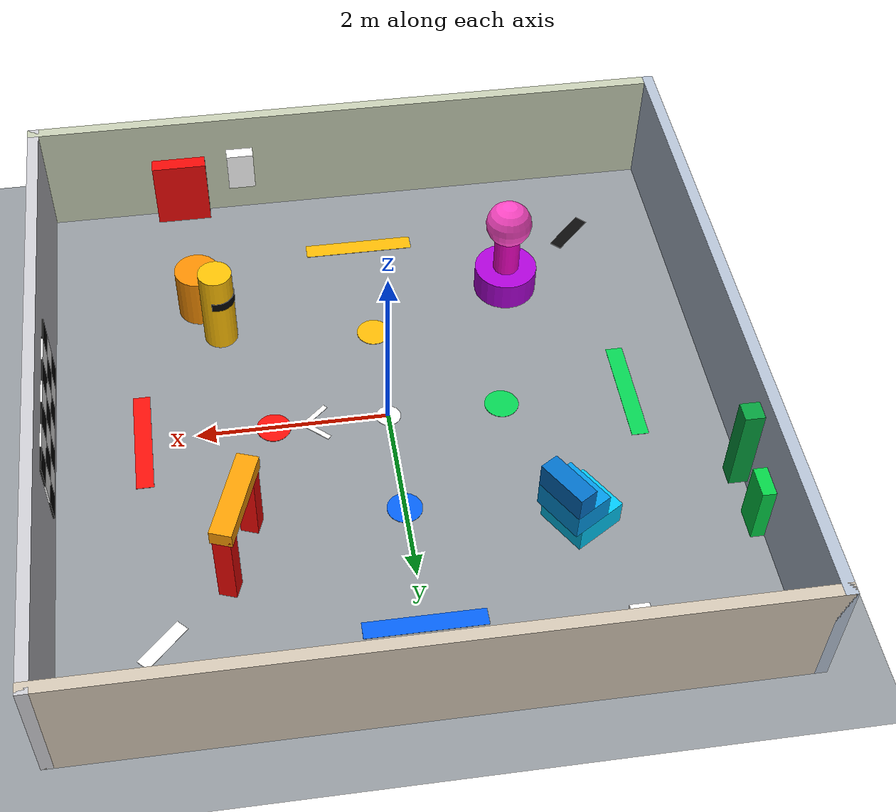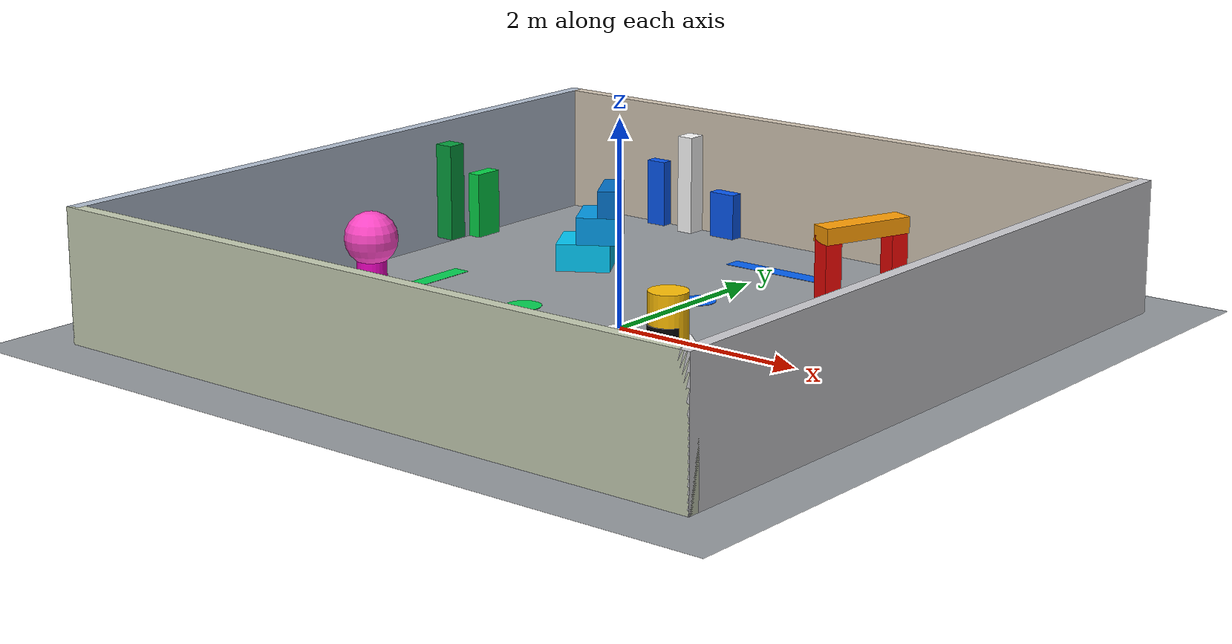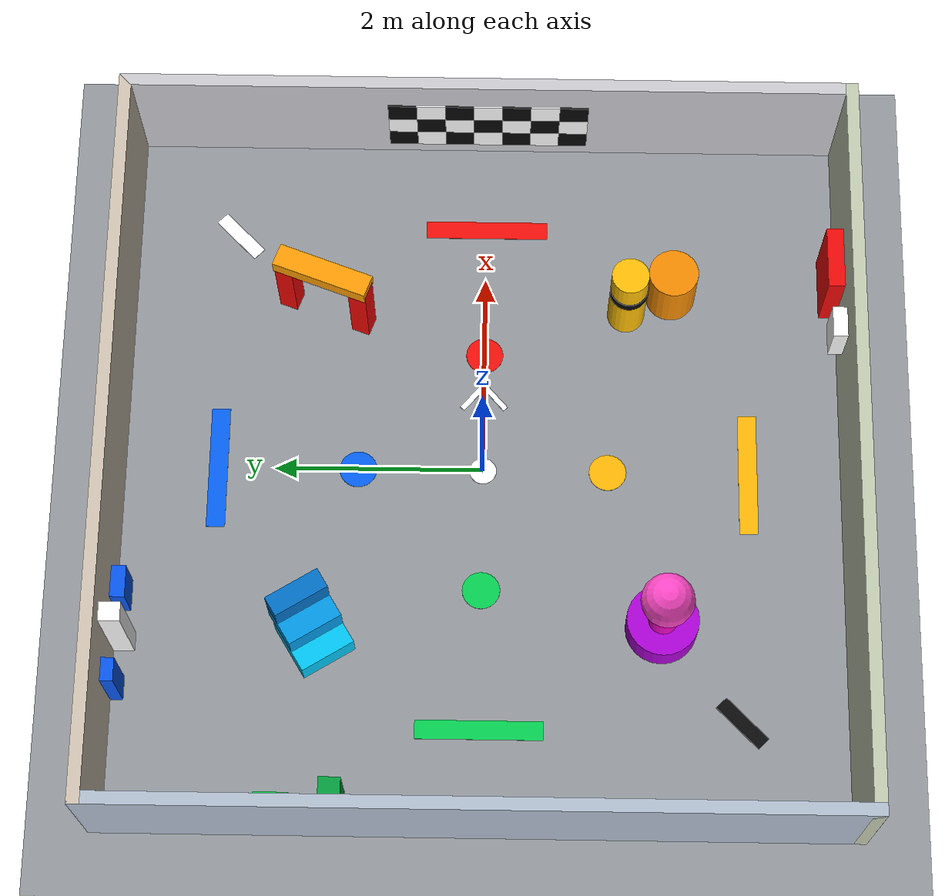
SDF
<?xml version="1.0"?>
<!-- Copyright 2026 Araco Hexapod contributors; SPDX-License-Identifier: MIT -->
<sdf version="1.10">
  <world name="araco_rgbd_validation">
    <physics name="dart_1000hz" type="dart">
      <max_step_size>0.001</max_step_size>
      <real_time_factor>1.0</real_time_factor>
    </physics>
    <gravity>0 0 -9.80665</gravity>
    <scene>
      <ambient>0.38 0.40 0.44 1</ambient>
      <background>0.58 0.68 0.82 1</background>
      <shadows>true</shadows>
    </scene>
    <light name="sun" type="directional">
      <pose>0 0 8 0 0 0</pose>
      <cast_shadows>true</cast_shadows>
      <intensity>1.1</intensity>
      <direction>-0.45 0.25 -0.86</direction>
      <diffuse>0.96 0.93 0.86 1</diffuse>
      <specular>0.24 0.24 0.28 1</specular>
      <attenuation>
        <range>1000</range>
        <constant>0.9</constant>
        <linear>0.01</linear>
        <quadratic>0.001</quadratic>
      </attenuation>
    </light>

    <plugin filename="gz-sim-physics-system" name="gz::sim::systems::Physics"/>
    <plugin filename="gz-sim-user-commands-system" name="gz::sim::systems::UserCommands"/>
    <plugin filename="gz-sim-scene-broadcaster-system" name="gz::sim::systems::SceneBroadcaster"/>
    <plugin filename="gz-sim-contact-system" name="gz::sim::systems::Contact"/>
    <plugin filename="gz-sim-sensors-system" name="gz::sim::systems::Sensors">
      <render_engine>ogre2</render_engine>
    </plugin>
    <plugin filename="gz-sim-imu-system" name="gz::sim::systems::Imu"/>

    <model name="ground_plane">
      <static>true</static>
      <link name="ground_link">
        <collision name="ground_collision">
          <geometry><plane><normal>0 0 1</normal><size>8 8</size></plane></geometry>
          <surface><friction><ode><mu>0.9</mu><mu2>0.9</mu2></ode></friction></surface>
        </collision>
        <visual name="ground_visual">
          <geometry><plane><normal>0 0 1</normal><size>8 8</size></plane></geometry>
          <material>
            <ambient>0.48 0.50 0.52 1</ambient>
            <diffuse>0.58 0.60 0.62 1</diffuse>
          </material>
        </visual>
      </link>
    </model>

    <!-- Thin visual-only floor marks provide RGB features without changing contact. -->
    <model name="floor_markers">
      <static>true</static>
      <link name="markers_link">
        <visual name="north_blue"><pose>0 2.55 0.002 0 0 0</pose><geometry><box><size>1.2 0.18 0.004</size></box></geometry><material><ambient>0.02 0.30 0.78 1</ambient><diffuse>0.02 0.38 0.95 1</diffuse></material></visual>
        <visual name="east_red"><pose>2.55 0 0.002 0 0 0</pose><geometry><box><size>0.18 1.2 0.004</size></box></geometry><material><ambient>0.82 0.04 0.04 1</ambient><diffuse>0.96 0.06 0.04 1</diffuse></material></visual>
        <visual name="south_yellow"><pose>0 -2.55 0.002 0 0 0</pose><geometry><box><size>1.2 0.18 0.004</size></box></geometry><material><ambient>0.85 0.58 0.02 1</ambient><diffuse>1.0 0.72 0.02 1</diffuse></material></visual>
        <visual name="west_green"><pose>-2.55 0 0.002 0 0 0</pose><geometry><box><size>0.18 1.2 0.004</size></box></geometry><material><ambient>0.02 0.60 0.24 1</ambient><diffuse>0.02 0.82 0.32 1</diffuse></material></visual>
        <visual name="route_corner_ne"><pose>2.45 2.45 0.003 0 0 0.785398</pose><geometry><box><size>0.55 0.14 0.006</size></box></geometry><material><ambient>0.95 0.95 0.95 1</ambient><diffuse>1 1 1 1</diffuse></material></visual>
        <visual name="route_corner_sw"><pose>-2.45 -2.45 0.003 0 0 0.785398</pose><geometry><box><size>0.55 0.14 0.006</size></box></geometry><material><ambient>0.08 0.08 0.08 1</ambient><diffuse>0.04 0.04 0.04 1</diffuse></material></visual>
        <visual name="acceptance_east"><pose>1.2 0 0.003 0 0 0</pose><geometry><cylinder><radius>0.18</radius><length>0.006</length></cylinder></geometry><material><ambient>0.82 0.04 0.04 1</ambient><diffuse>0.96 0.06 0.04 1</diffuse></material></visual>
        <visual name="acceptance_north"><pose>0 1.2 0.003 0 0 0</pose><geometry><cylinder><radius>0.18</radius><length>0.006</length></cylinder></geometry><material><ambient>0.02 0.30 0.78 1</ambient><diffuse>0.02 0.38 0.95 1</diffuse></material></visual>
        <visual name="acceptance_west"><pose>-1.2 0 0.003 0 0 0</pose><geometry><cylinder><radius>0.18</radius><length>0.006</length></cylinder></geometry><material><ambient>0.02 0.60 0.24 1</ambient><diffuse>0.02 0.82 0.32 1</diffuse></material></visual>
        <visual name="acceptance_south"><pose>0 -1.2 0.003 0 0 0</pose><geometry><cylinder><radius>0.18</radius><length>0.006</length></cylinder></geometry><material><ambient>0.85 0.58 0.02 1</ambient><diffuse>1.0 0.72 0.02 1</diffuse></material></visual>
        <visual name="acceptance_origin"><pose>0 0 0.003 0 0 0</pose><geometry><cylinder><radius>0.13</radius><length>0.006</length></cylinder></geometry><material><ambient>0.90 0.90 0.90 1</ambient><diffuse>1 1 1 1</diffuse></material></visual>
        <!-- White chevron points along the required start / +X body heading. -->
        <visual name="start_heading_shaft"><pose>0.45 0 0.007 0 0 0</pose><geometry><box><size>0.78 0.055 0.008</size></box></geometry><material><ambient>0.98 0.98 0.98 1</ambient><diffuse>1 1 1 1</diffuse></material></visual>
        <visual name="start_heading_left"><pose>0.76 0.105 0.007 0 0 -0.72</pose><geometry><box><size>0.32 0.055 0.008</size></box></geometry><material><ambient>0.98 0.98 0.98 1</ambient><diffuse>1 1 1 1</diffuse></material></visual>
        <visual name="start_heading_right"><pose>0.76 -0.105 0.007 0 0 0.72</pose><geometry><box><size>0.32 0.055 0.008</size></box></geometry><material><ambient>0.98 0.98 0.98 1</ambient><diffuse>1 1 1 1</diffuse></material></visual>
      </link>
    </model>

    <model name="arena_walls">
      <static>true</static>
      <link name="walls_link">
        <collision name="east_collision"><pose>3.5 0 0.65 0 0 0</pose><geometry><box><size>0.12 7.12 1.3</size></box></geometry></collision>
        <collision name="west_collision"><pose>-3.5 0 0.65 0 0 0</pose><geometry><box><size>0.12 7.12 1.3</size></box></geometry></collision>
        <collision name="north_collision"><pose>0 3.5 0.65 0 0 0</pose><geometry><box><size>7.12 0.12 1.3</size></box></geometry></collision>
        <collision name="south_collision"><pose>0 -3.5 0.65 0 0 0</pose><geometry><box><size>7.12 0.12 1.3</size></box></geometry></collision>
        <visual name="east_wall"><pose>3.5 0 0.65 0 0 0</pose><geometry><box><size>0.12 7.12 1.3</size></box></geometry><material><ambient>0.72 0.72 0.74 1</ambient><diffuse>0.80 0.80 0.82 1</diffuse></material></visual>
        <visual name="west_wall"><pose>-3.5 0 0.65 0 0 0</pose><geometry><box><size>0.12 7.12 1.3</size></box></geometry><material><ambient>0.62 0.66 0.72 1</ambient><diffuse>0.70 0.75 0.82 1</diffuse></material></visual>
        <visual name="north_wall"><pose>0 3.5 0.65 0 0 0</pose><geometry><box><size>7.12 0.12 1.3</size></box></geometry><material><ambient>0.72 0.68 0.62 1</ambient><diffuse>0.82 0.77 0.70 1</diffuse></material></visual>
        <visual name="south_wall"><pose>0 -3.5 0.65 0 0 0</pose><geometry><box><size>7.12 0.12 1.3</size></box></geometry><material><ambient>0.68 0.70 0.64 1</ambient><diffuse>0.77 0.80 0.70 1</diffuse></material></visual>
      </link>
    </model>

    <!-- Front checkerboard: immediately visible from the nominal +X camera view. -->
    <model name="east_checkerboard">
      <static>true</static>
      <link name="checker_link">
        <visual name="c00"><pose>3.432 -0.84 0.30 0 0 0</pose><geometry><box><size>0.018 0.28 0.26</size></box></geometry><material><ambient>0.03 0.03 0.03 1</ambient><diffuse>0.02 0.02 0.02 1</diffuse></material></visual>
        <visual name="c01"><pose>3.432 -0.56 0.30 0 0 0</pose><geometry><box><size>0.018 0.28 0.26</size></box></geometry><material><ambient>0.95 0.95 0.95 1</ambient><diffuse>1 1 1 1</diffuse></material></visual>
        <visual name="c02"><pose>3.432 -0.28 0.30 0 0 0</pose><geometry><box><size>0.018 0.28 0.26</size></box></geometry><material><ambient>0.03 0.03 0.03 1</ambient><diffuse>0.02 0.02 0.02 1</diffuse></material></visual>
        <visual name="c03"><pose>3.432 0 0.30 0 0 0</pose><geometry><box><size>0.018 0.28 0.26</size></box></geometry><material><ambient>0.95 0.95 0.95 1</ambient><diffuse>1 1 1 1</diffuse></material></visual>
        <visual name="c04"><pose>3.432 0.28 0.30 0 0 0</pose><geometry><box><size>0.018 0.28 0.26</size></box></geometry><material><ambient>0.03 0.03 0.03 1</ambient><diffuse>0.02 0.02 0.02 1</diffuse></material></visual>
        <visual name="c05"><pose>3.432 0.56 0.30 0 0 0</pose><geometry><box><size>0.018 0.28 0.26</size></box></geometry><material><ambient>0.95 0.95 0.95 1</ambient><diffuse>1 1 1 1</diffuse></material></visual>
        <visual name="c06"><pose>3.432 0.84 0.30 0 0 0</pose><geometry><box><size>0.018 0.28 0.26</size></box></geometry><material><ambient>0.03 0.03 0.03 1</ambient><diffuse>0.02 0.02 0.02 1</diffuse></material></visual>
        <visual name="c10"><pose>3.432 -0.84 0.56 0 0 0</pose><geometry><box><size>0.018 0.28 0.26</size></box></geometry><material><ambient>0.95 0.95 0.95 1</ambient><diffuse>1 1 1 1</diffuse></material></visual>
        <visual name="c11"><pose>3.432 -0.56 0.56 0 0 0</pose><geometry><box><size>0.018 0.28 0.26</size></box></geometry><material><ambient>0.03 0.03 0.03 1</ambient><diffuse>0.02 0.02 0.02 1</diffuse></material></visual>
        <visual name="c12"><pose>3.432 -0.28 0.56 0 0 0</pose><geometry><box><size>0.018 0.28 0.26</size></box></geometry><material><ambient>0.95 0.95 0.95 1</ambient><diffuse>1 1 1 1</diffuse></material></visual>
        <visual name="c13"><pose>3.432 0 0.56 0 0 0</pose><geometry><box><size>0.018 0.28 0.26</size></box></geometry><material><ambient>0.03 0.03 0.03 1</ambient><diffuse>0.02 0.02 0.02 1</diffuse></material></visual>
        <visual name="c14"><pose>3.432 0.28 0.56 0 0 0</pose><geometry><box><size>0.018 0.28 0.26</size></box></geometry><material><ambient>0.95 0.95 0.95 1</ambient><diffuse>1 1 1 1</diffuse></material></visual>
        <visual name="c15"><pose>3.432 0.56 0.56 0 0 0</pose><geometry><box><size>0.018 0.28 0.26</size></box></geometry><material><ambient>0.03 0.03 0.03 1</ambient><diffuse>0.02 0.02 0.02 1</diffuse></material></visual>
        <visual name="c16"><pose>3.432 0.84 0.56 0 0 0</pose><geometry><box><size>0.018 0.28 0.26</size></box></geometry><material><ambient>0.95 0.95 0.95 1</ambient><diffuse>1 1 1 1</diffuse></material></visual>
        <visual name="c20"><pose>3.432 -0.84 0.82 0 0 0</pose><geometry><box><size>0.018 0.28 0.26</size></box></geometry><material><ambient>0.03 0.03 0.03 1</ambient><diffuse>0.02 0.02 0.02 1</diffuse></material></visual>
        <visual name="c21"><pose>3.432 -0.56 0.82 0 0 0</pose><geometry><box><size>0.018 0.28 0.26</size></box></geometry><material><ambient>0.95 0.95 0.95 1</ambient><diffuse>1 1 1 1</diffuse></material></visual>
        <visual name="c22"><pose>3.432 -0.28 0.82 0 0 0</pose><geometry><box><size>0.018 0.28 0.26</size></box></geometry><material><ambient>0.03 0.03 0.03 1</ambient><diffuse>0.02 0.02 0.02 1</diffuse></material></visual>
        <visual name="c23"><pose>3.432 0 0.82 0 0 0</pose><geometry><box><size>0.018 0.28 0.26</size></box></geometry><material><ambient>0.95 0.95 0.95 1</ambient><diffuse>1 1 1 1</diffuse></material></visual>
        <visual name="c24"><pose>3.432 0.28 0.82 0 0 0</pose><geometry><box><size>0.018 0.28 0.26</size></box></geometry><material><ambient>0.03 0.03 0.03 1</ambient><diffuse>0.02 0.02 0.02 1</diffuse></material></visual>
        <visual name="c25"><pose>3.432 0.56 0.82 0 0 0</pose><geometry><box><size>0.018 0.28 0.26</size></box></geometry><material><ambient>0.95 0.95 0.95 1</ambient><diffuse>1 1 1 1</diffuse></material></visual>
        <visual name="c26"><pose>3.432 0.84 0.82 0 0 0</pose><geometry><box><size>0.018 0.28 0.26</size></box></geometry><material><ambient>0.03 0.03 0.03 1</ambient><diffuse>0.02 0.02 0.02 1</diffuse></material></visual>
      </link>
    </model>

    <!-- Four distinct geometry/color signatures make every side recognizable. -->
    <model name="red_gate">
      <static>true</static>
      <pose>1.65 1.55 0 0 0 -0.35</pose>
      <link name="gate_link">
        <collision name="left_post_collision"><pose>0 0.38 0.45 0 0 0</pose><geometry><box><size>0.18 0.18 0.9</size></box></geometry></collision>
        <collision name="right_post_collision"><pose>0 -0.38 0.45 0 0 0</pose><geometry><box><size>0.18 0.18 0.9</size></box></geometry></collision>
        <collision name="top_collision"><pose>0 0 0.92 0 0 0</pose><geometry><box><size>0.22 0.94 0.16</size></box></geometry></collision>
        <visual name="left_post"><pose>0 0.38 0.45 0 0 0</pose><geometry><box><size>0.18 0.18 0.9</size></box></geometry><material><ambient>0.76 0.02 0.02 1</ambient><diffuse>0.95 0.03 0.02 1</diffuse></material></visual>
        <visual name="right_post"><pose>0 -0.38 0.45 0 0 0</pose><geometry><box><size>0.18 0.18 0.9</size></box></geometry><material><ambient>0.76 0.02 0.02 1</ambient><diffuse>0.95 0.03 0.02 1</diffuse></material></visual>
        <visual name="top"><pose>0 0 0.92 0 0 0</pose><geometry><box><size>0.22 0.94 0.16</size></box></geometry><material><ambient>0.96 0.48 0.02 1</ambient><diffuse>1.0 0.62 0.02 1</diffuse></material></visual>
      </link>
    </model>

    <model name="cyan_steps">
      <static>true</static>
      <pose>-1.70 1.55 0 0 0 0.55</pose>
      <link name="steps_link">
        <collision name="step1_collision"><pose>0 0 0.14 0 0 0</pose><geometry><box><size>0.55 0.55 0.28</size></box></geometry></collision>
        <collision name="step2_collision"><pose>0.14 0 0.42 0 0 0</pose><geometry><box><size>0.42 0.55 0.28</size></box></geometry></collision>
        <collision name="step3_collision"><pose>0.25 0 0.70 0 0 0</pose><geometry><box><size>0.20 0.55 0.28</size></box></geometry></collision>
        <visual name="step1"><pose>0 0 0.14 0 0 0</pose><geometry><box><size>0.55 0.55 0.28</size></box></geometry><material><ambient>0.01 0.55 0.70 1</ambient><diffuse>0.01 0.78 0.96 1</diffuse></material></visual>
        <visual name="step2"><pose>0.14 0 0.42 0 0 0</pose><geometry><box><size>0.42 0.55 0.28</size></box></geometry><material><ambient>0.01 0.42 0.66 1</ambient><diffuse>0.01 0.60 0.90 1</diffuse></material></visual>
        <visual name="step3"><pose>0.25 0 0.70 0 0 0</pose><geometry><box><size>0.20 0.55 0.28</size></box></geometry><material><ambient>0.01 0.30 0.56 1</ambient><diffuse>0.01 0.44 0.78 1</diffuse></material></visual>
      </link>
    </model>

    <model name="magenta_totem">
      <static>true</static>
      <pose>-1.55 -1.70 0 0 0 0</pose>
      <link name="totem_link">
        <collision name="base_collision"><pose>0 0 0.16 0 0 0</pose><geometry><cylinder><radius>0.34</radius><length>0.32</length></cylinder></geometry></collision>
        <collision name="stem_collision"><pose>0 0 0.58 0 0 0</pose><geometry><cylinder><radius>0.14</radius><length>0.58</length></cylinder></geometry></collision>
        <collision name="head_collision"><pose>0 0 0.96 0 0 0</pose><geometry><sphere><radius>0.25</radius></sphere></geometry></collision>
        <visual name="base"><pose>0 0 0.16 0 0 0</pose><geometry><cylinder><radius>0.34</radius><length>0.32</length></cylinder></geometry><material><ambient>0.45 0.01 0.56 1</ambient><diffuse>0.68 0.01 0.84 1</diffuse></material></visual>
        <visual name="stem"><pose>0 0 0.58 0 0 0</pose><geometry><cylinder><radius>0.14</radius><length>0.58</length></cylinder></geometry><material><ambient>0.78 0.02 0.62 1</ambient><diffuse>0.96 0.02 0.78 1</diffuse></material></visual>
        <visual name="head"><pose>0 0 0.96 0 0 0</pose><geometry><sphere><radius>0.25</radius></sphere></geometry><material><ambient>0.93 0.18 0.68 1</ambient><diffuse>1.0 0.28 0.78 1</diffuse></material></visual>
      </link>
    </model>

    <model name="yellow_pillars">
      <static>true</static>
      <pose>1.75 -1.60 0 0 0 0.42</pose>
      <link name="pillars_link">
        <collision name="tall_collision"><pose>0 0.24 0.48 0 0 0</pose><geometry><cylinder><radius>0.18</radius><length>0.96</length></cylinder></geometry></collision>
        <collision name="short_collision"><pose>0 -0.24 0.30 0 0 0</pose><geometry><cylinder><radius>0.24</radius><length>0.60</length></cylinder></geometry></collision>
        <visual name="tall"><pose>0 0.24 0.48 0 0 0</pose><geometry><cylinder><radius>0.18</radius><length>0.96</length></cylinder></geometry><material><ambient>0.92 0.58 0.01 1</ambient><diffuse>1.0 0.75 0.02 1</diffuse></material></visual>
        <visual name="short"><pose>0 -0.24 0.30 0 0 0</pose><geometry><cylinder><radius>0.24</radius><length>0.60</length></cylinder></geometry><material><ambient>0.76 0.42 0.01 1</ambient><diffuse>0.96 0.55 0.01 1</diffuse></material></visual>
        <visual name="stripe"><pose>-0.005 0.24 0.62 0 0 0</pose><geometry><cylinder><radius>0.184</radius><length>0.10</length></cylinder></geometry><material><ambient>0.03 0.03 0.03 1</ambient><diffuse>0.02 0.02 0.02 1</diffuse></material></visual>
      </link>
    </model>

    <!-- Offset wall relief adds parallax/depth edges around the loop. -->
    <model name="wall_relief">
      <static>true</static>
      <link name="relief_link">
        <visual name="north_bar1"><pose>-2.2 3.40 0.35 0 0 0</pose><geometry><box><size>0.22 0.16 0.70</size></box></geometry><material><ambient>0.03 0.25 0.72 1</ambient><diffuse>0.03 0.34 0.94 1</diffuse></material></visual>
        <visual name="north_bar2"><pose>-1.75 3.36 0.52 0 0 0</pose><geometry><box><size>0.18 0.24 1.04</size></box></geometry><material><ambient>0.95 0.95 0.95 1</ambient><diffuse>1 1 1 1</diffuse></material></visual>
        <visual name="north_bar3"><pose>-1.30 3.39 0.24 0 0 0</pose><geometry><box><size>0.30 0.18 0.48</size></box></geometry><material><ambient>0.03 0.25 0.72 1</ambient><diffuse>0.03 0.34 0.94 1</diffuse></material></visual>
        <visual name="south_red"><pose>1.95 -3.38 0.40 0 0 0</pose><geometry><box><size>0.60 0.20 0.80</size></box></geometry><material><ambient>0.74 0.03 0.03 1</ambient><diffuse>0.94 0.04 0.03 1</diffuse></material></visual>
        <visual name="south_white"><pose>1.25 -3.39 0.64 0 0 0</pose><geometry><box><size>0.30 0.18 0.46</size></box></geometry><material><ambient>0.96 0.96 0.96 1</ambient><diffuse>1 1 1 1</diffuse></material></visual>
        <visual name="west_green1"><pose>-3.39 1.85 0.34 0 0 0</pose><geometry><box><size>0.18 0.32 0.68</size></box></geometry><material><ambient>0.02 0.62 0.22 1</ambient><diffuse>0.02 0.82 0.28 1</diffuse></material></visual>
        <visual name="west_green2"><pose>-3.36 1.30 0.58 0 0 0</pose><geometry><box><size>0.24 0.20 1.00</size></box></geometry><material><ambient>0.02 0.42 0.18 1</ambient><diffuse>0.02 0.62 0.24 1</diffuse></material></visual>
      </link>
    </model>
  </world>
</sdf>
